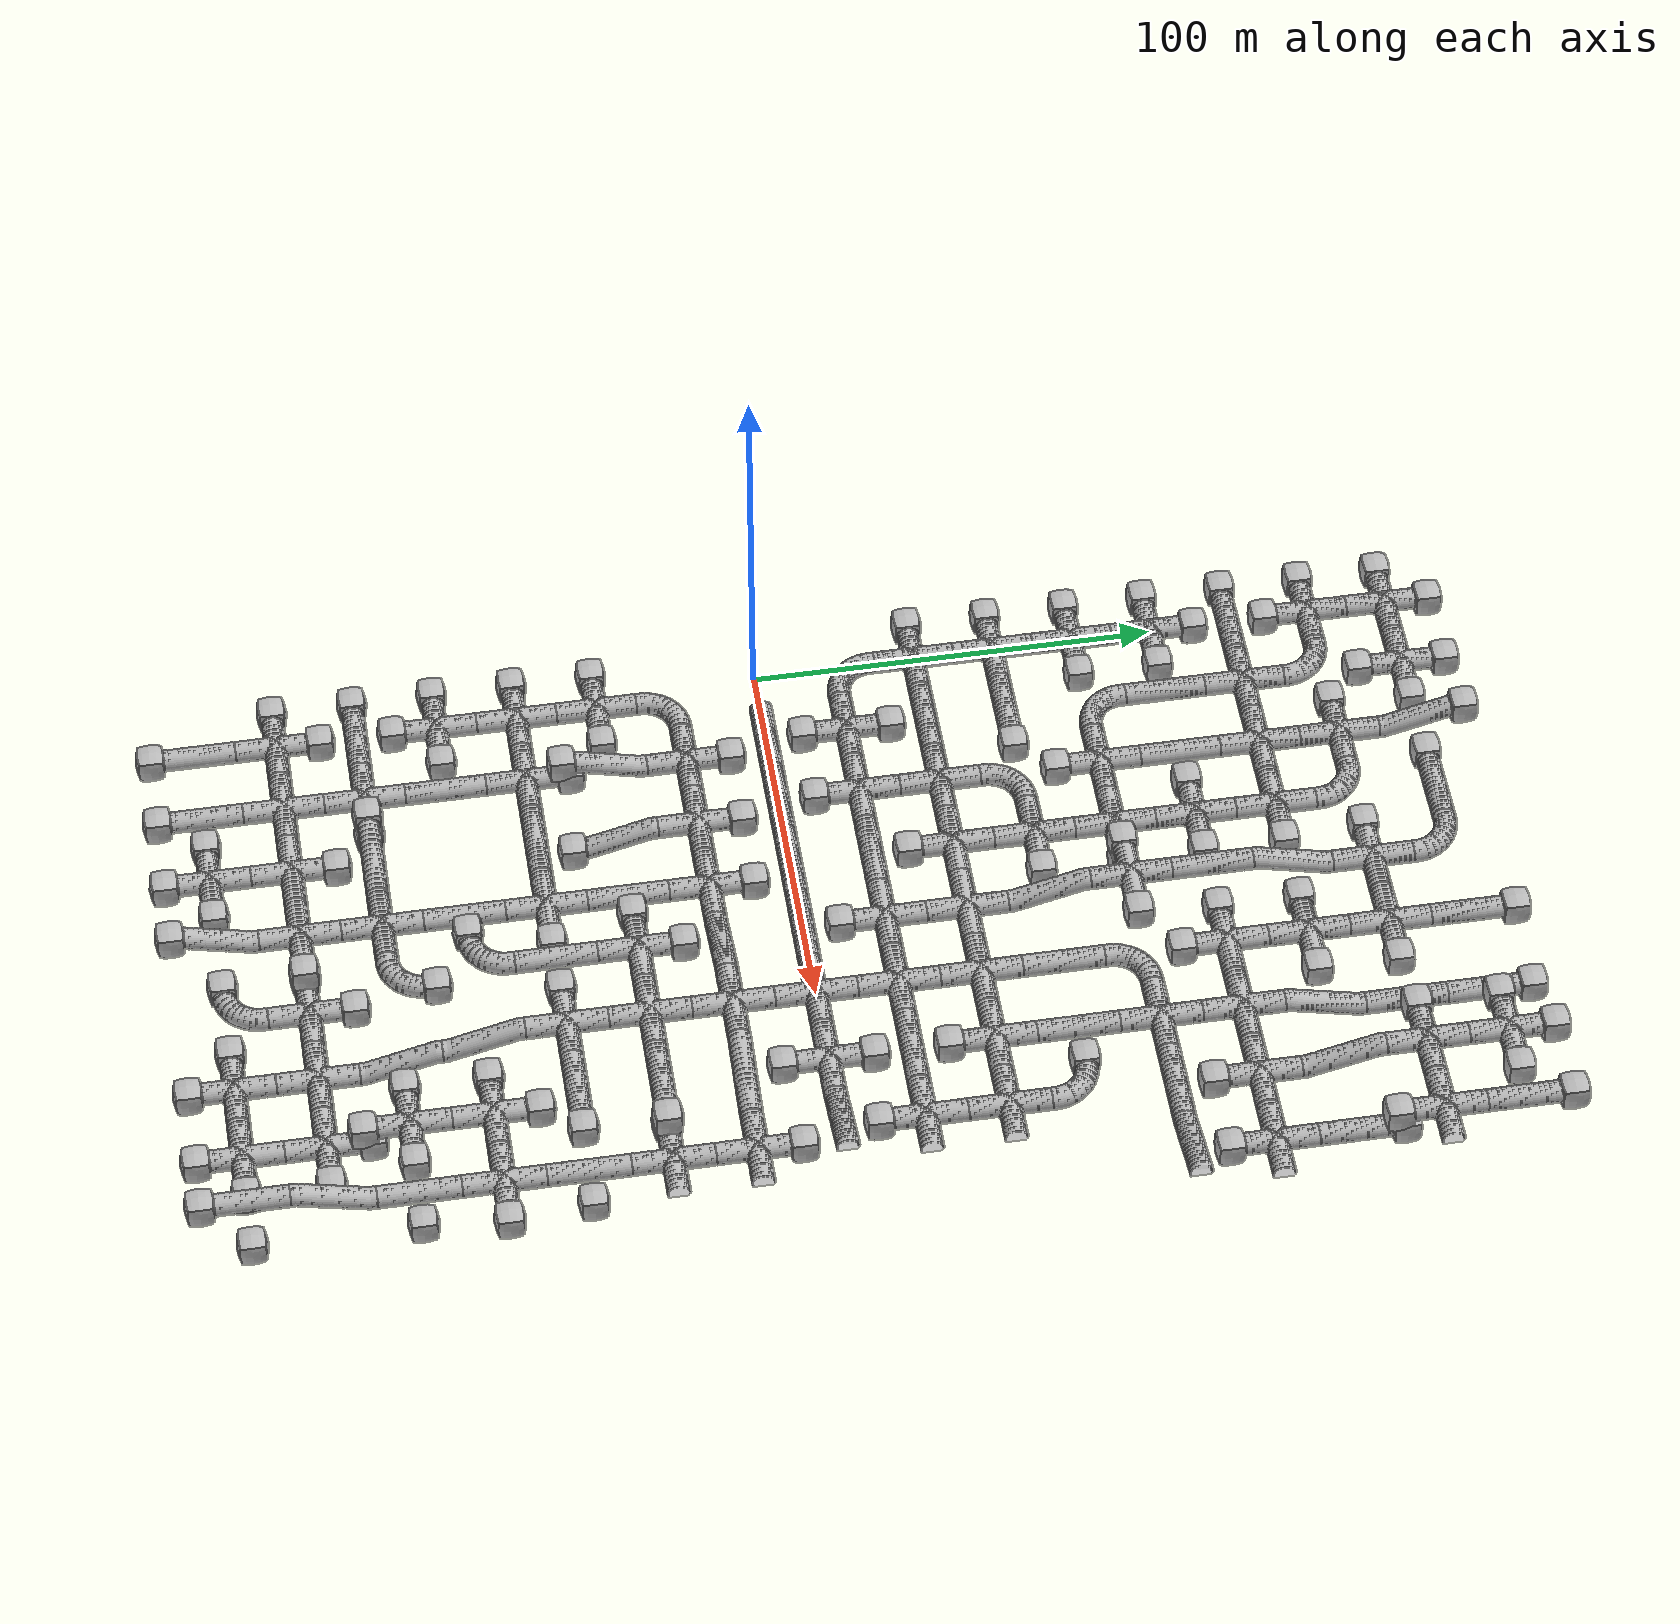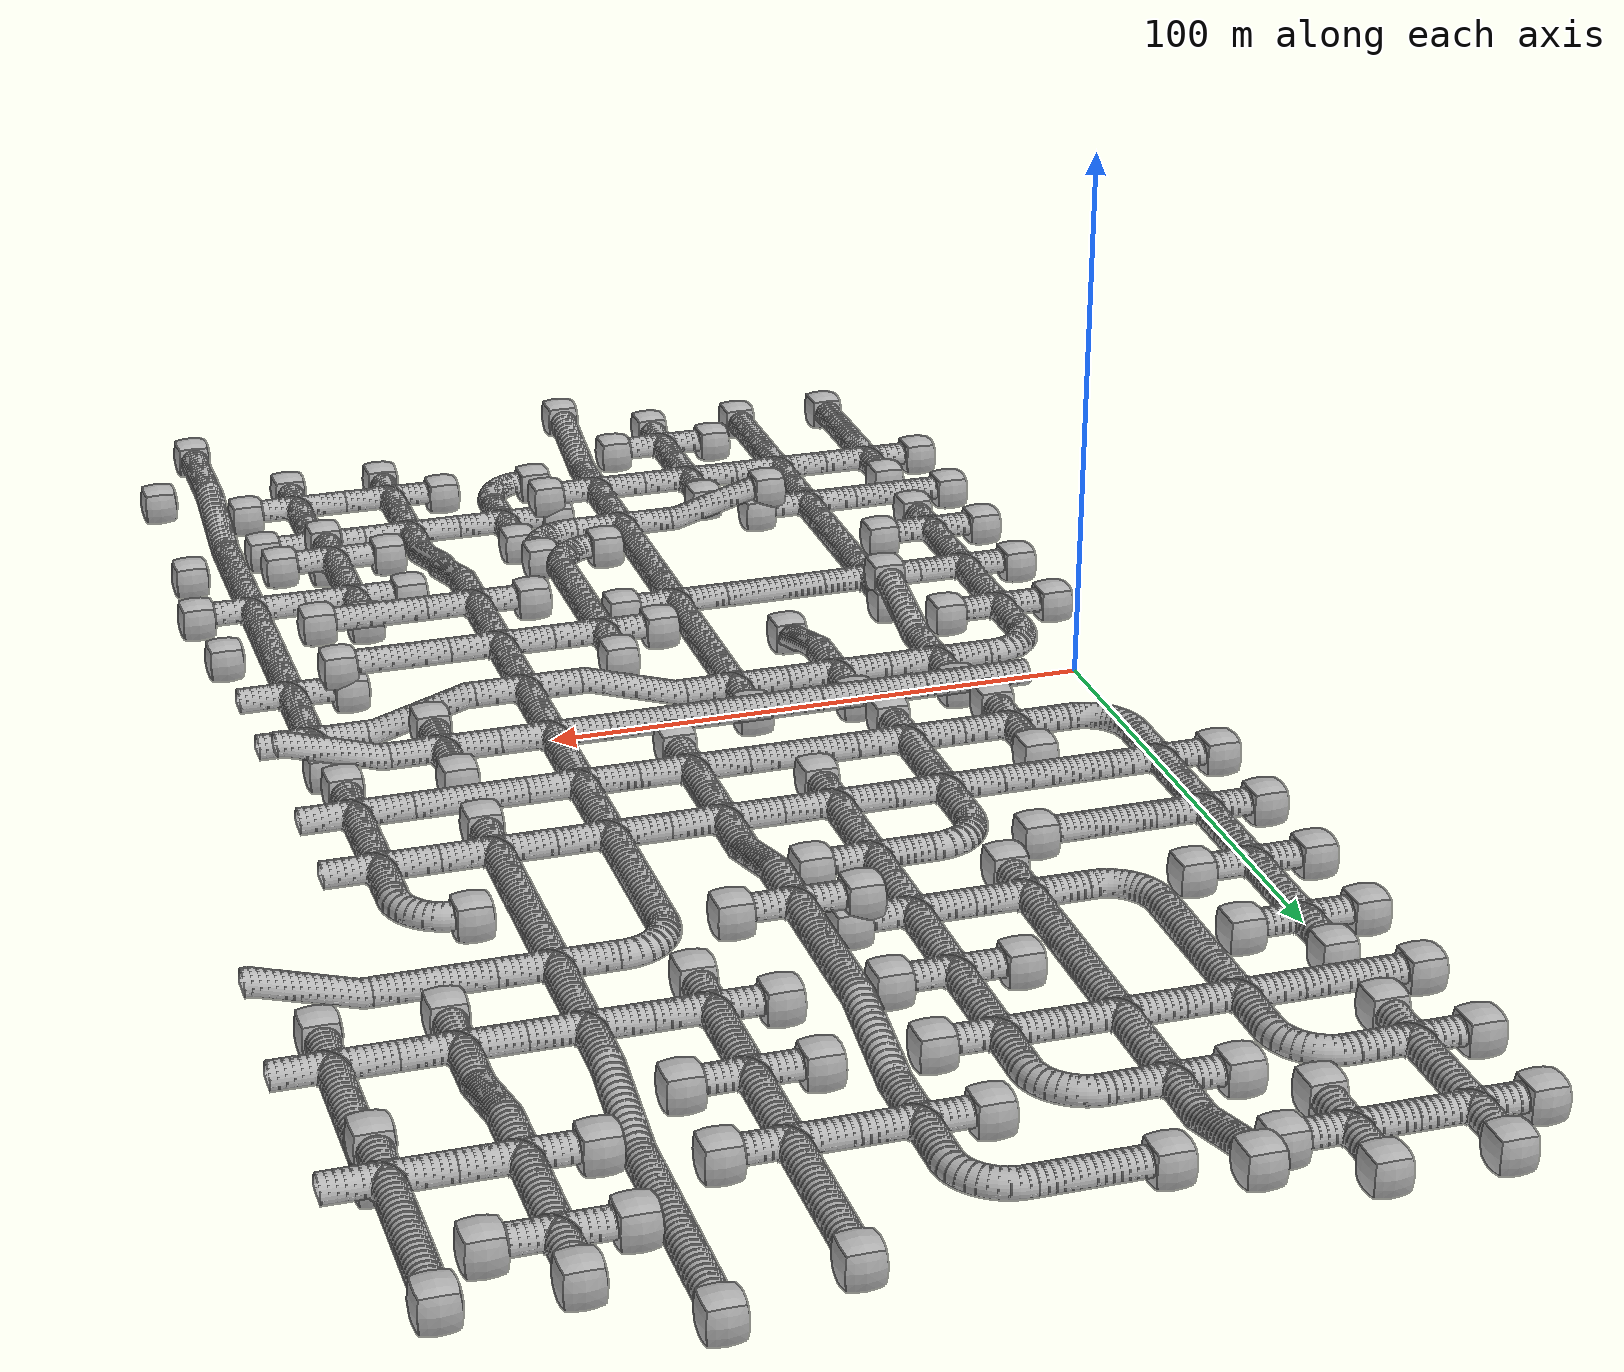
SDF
<sdf version="1.6">
 <world name="tunnel_circuit_03">
  <include><name>artifact_origin</name><pose>2 4 0.5 0 0 0</pose><uri>model://fiducial</uri></include>
  <include>
   <name>tile_1</name>
   <uri>model://tunnel_tile_1</uri>
   <pose>0.000000 160.000000 0.000000 0 0 0.000000</pose>
  </include>
  <include>
   <name>tile_2</name>
   <uri>model://tunnel_tile_blocker</uri>
   <pose>-11.000000 160.000000 0.000000 0 0 0.000000</pose>
  </include>
  <include>
   <name>tile_3</name>
   <uri>model://tunnel_tile_blocker</uri>
   <pose>0.000000 171.000000 0.000000 0 0 0.000000</pose>
  </include>
  <include>
   <name>tile_4</name>
   <uri>model://tunnel_tile_1</uri>
   <pose>20.000000 160.000000 0.000000 0 0 0.000000</pose>
  </include>
  <include>
   <name>tile_5</name>
   <uri>model://tunnel_tile_blocker</uri>
   <pose>20.000000 171.000000 0.000000 0 0 0.000000</pose>
  </include>
  <include>
   <name>tile_6</name>
   <uri>model://tunnel_tile_blocker</uri>
   <pose>20.000000 149.000000 0.000000 0 0 0.000000</pose>
  </include>
  <include>
   <name>tile_7</name>
   <uri>model://tunnel_tile_blocker</uri>
   <pose>31.000000 160.000000 0.000000 0 0 0.000000</pose>
  </include>
  <include>
   <name>tile_8</name>
   <uri>model://tunnel_tile_6</uri>
   <pose>40.000000 160.000000 0.000000 0 0 0.000000</pose>
  </include>
  <include>
   <name>tile_9</name>
   <uri>model://tunnel_tile_blocker</uri>
   <pose>40.000000 171.000000 5.000000 0 0 0.000000</pose>
  </include>
  <include>
   <name>tile_10</name>
   <uri>model://tunnel_tile_5</uri>
   <pose>60.000000 160.000000 0.000000 0 0 4.712389</pose>
  </include>
  <include>
   <name>tile_11</name>
   <uri>model://tunnel_tile_blocker</uri>
   <pose>49.000000 160.000000 0.000000 0 0 0.000000</pose>
  </include>
  <include>
   <name>tile_12</name>
   <uri>model://tunnel_tile_2</uri>
   <pose>80.000000 160.000000 0.000000 0 0 4.712389</pose>
  </include>
  <include>
   <name>tile_13</name>
   <uri>model://tunnel_tile_5</uri>
   <pose>100.000000 160.000000 0.000000 0 0 3.141593</pose>
  </include>
  <include>
   <name>tile_14</name>
   <uri>model://tunnel_tile_blocker</uri>
   <pose>100.000000 171.000000 0.000000 0 0 0.000000</pose>
  </include>
  <include>
   <name>tile_15</name>
   <uri>model://tunnel_tile_5</uri>
   <pose>120.000000 160.000000 -5.000000 0 0 3.141593</pose>
  </include>
  <include>
   <name>tile_16</name>
   <uri>model://tunnel_tile_blocker</uri>
   <pose>120.000000 171.000000 -5.000000 0 0 0.000000</pose>
  </include>
  <include>
   <name>tile_17</name>
   <uri>model://tunnel_tile_1</uri>
   <pose>140.000000 160.000000 5.000000 0 0 0.000000</pose>
  </include>
  <include>
   <name>tile_18</name>
   <uri>model://tunnel_tile_blocker</uri>
   <pose>129.000000 160.000000 5.000000 0 0 0.000000</pose>
  </include>
  <include>
   <name>tile_19</name>
   <uri>model://tunnel_tile_blocker</uri>
   <pose>151.000000 160.000000 5.000000 0 0 0.000000</pose>
  </include>
  <include>
   <name>tile_20</name>
   <uri>model://tunnel_tile_blocker</uri>
   <pose>140.000000 171.000000 5.000000 0 0 0.000000</pose>
  </include>
  <include>
   <name>tile_21</name>
   <uri>model://tunnel_tile_5</uri>
   <pose>160.000000 160.000000 5.000000 0 0 3.141593</pose>
  </include>
  <include>
   <name>tile_22</name>
   <uri>model://tunnel_tile_blocker</uri>
   <pose>160.000000 171.000000 5.000000 0 0 0.000000</pose>
  </include>
  <include>
   <name>tile_42</name>
   <uri>model://tunnel_tile_1</uri>
   <pose>0.000000 140.000000 0.000000 0 0 0.000000</pose>
  </include>
  <include>
   <name>tile_43</name>
   <uri>model://tunnel_tile_blocker</uri>
   <pose>0.000000 129.000000 0.000000 0 0 0.000000</pose>
  </include>
  <include>
   <name>tile_44</name>
   <uri>model://tunnel_tile_blocker</uri>
   <pose>-11.000000 140.000000 0.000000 0 0 0.000000</pose>
  </include>
  <include>
   <name>tile_45</name>
   <uri>model://tunnel_tile_2</uri>
   <pose>20.000000 140.000000 0.000000 0 0 4.712389</pose>
  </include>
  <include>
   <name>tile_46</name>
   <uri>model://tunnel_tile_1</uri>
   <pose>40.000000 140.000000 0.000000 0 0 0.000000</pose>
  </include>
  <include>
   <name>tile_47</name>
   <uri>model://tunnel_tile_blocker</uri>
   <pose>29.000000 140.000000 0.000000 0 0 0.000000</pose>
  </include>
  <include>
   <name>tile_48</name>
   <uri>model://tunnel_tile_2</uri>
   <pose>60.000000 140.000000 0.000000 0 0 4.712389</pose>
  </include>
  <include>
   <name>tile_49</name>
   <uri>model://tunnel_tile_1</uri>
   <pose>80.000000 140.000000 0.000000 0 0 0.000000</pose>
  </include>
  <include>
   <name>tile_50</name>
   <uri>model://tunnel_tile_blocker</uri>
   <pose>69.000000 140.000000 0.000000 0 0 0.000000</pose>
  </include>
  <include>
   <name>tile_51</name>
   <uri>model://tunnel_tile_1</uri>
   <pose>100.000000 140.000000 0.000000 0 0 0.000000</pose>
  </include>
  <include>
   <name>tile_52</name>
   <uri>model://tunnel_tile_blocker</uri>
   <pose>111.000000 140.000000 0.000000 0 0 0.000000</pose>
  </include>
  <include>
   <name>tile_53</name>
   <uri>model://tunnel_tile_5</uri>
   <pose>120.000000 140.000000 -5.000000 0 0 3.141593</pose>
  </include>
  <include>
   <name>tile_54</name>
   <uri>model://tunnel_tile_1</uri>
   <pose>140.000000 140.000000 5.000000 0 0 0.000000</pose>
  </include>
  <include>
   <name>tile_55</name>
   <uri>model://tunnel_tile_blocker</uri>
   <pose>129.000000 140.000000 5.000000 0 0 0.000000</pose>
  </include>
  <include>
   <name>tile_56</name>
   <uri>model://tunnel_tile_1</uri>
   <pose>160.000000 140.000000 5.000000 0 0 0.000000</pose>
  </include>
  <include>
   <name>tile_57</name>
   <uri>model://tunnel_tile_blocker</uri>
   <pose>160.000000 129.000000 5.000000 0 0 0.000000</pose>
  </include>
  <include>
   <name>tile_73</name>
   <uri>model://tunnel_tile_5</uri>
   <pose>0.000000 120.000000 0.000000 0 0 4.712389</pose>
  </include>
  <include>
   <name>tile_74</name>
   <uri>model://tunnel_tile_blocker</uri>
   <pose>-11.000000 120.000000 0.000000 0 0 0.000000</pose>
  </include>
  <include>
   <name>tile_75</name>
   <uri>model://tunnel_tile_1</uri>
   <pose>20.000000 120.000000 0.000000 0 0 0.000000</pose>
  </include>
  <include>
   <name>tile_76</name>
   <uri>model://tunnel_tile_1</uri>
   <pose>40.000000 120.000000 0.000000 0 0 0.000000</pose>
  </include>
  <include>
   <name>tile_77</name>
   <uri>model://tunnel_tile_1</uri>
   <pose>60.000000 120.000000 0.000000 0 0 0.000000</pose>
  </include>
  <include>
   <name>tile_78</name>
   <uri>model://tunnel_tile_blocker</uri>
   <pose>71.000000 120.000000 0.000000 0 0 0.000000</pose>
  </include>
  <include>
   <name>phone_1</name>
   <uri>model://Phone</uri>
   <pose>62.200000 124.100000 0.008000 1.570796 3.141593 0.000000</pose>
  </include>
  <include>
   <name>tile_79</name>
   <uri>model://tunnel_tile_6</uri>
   <pose>80.000000 120.000000 0.000000 0 0 3.141593</pose>
  </include>
  <include>
   <name>tile_80</name>
   <uri>model://tunnel_tile_1</uri>
   <pose>100.000000 120.000000 0.000000 0 0 0.000000</pose>
  </include>
  <include>
   <name>tile_81</name>
   <uri>model://tunnel_tile_blocker</uri>
   <pose>89.000000 120.000000 0.000000 0 0 0.000000</pose>
  </include>
  <include>
   <name>tile_82</name>
   <uri>model://tunnel_tile_blocker</uri>
   <pose>111.000000 120.000000 0.000000 0 0 0.000000</pose>
  </include>
  <include>
   <name>tile_83</name>
   <uri>model://tunnel_tile_6</uri>
   <pose>120.000000 120.000000 -5.000000 0 0 3.141593</pose>
  </include>
  <include>
   <name>tile_84</name>
   <uri>model://tunnel_tile_6</uri>
   <pose>140.000000 120.000000 0.000000 0 0 0.000000</pose>
  </include>
  <include>
   <name>tile_85</name>
   <uri>model://tunnel_tile_5</uri>
   <pose>160.000000 120.000000 0.000000 0 0 3.141593</pose>
  </include>
  <include>
   <name>tile_86</name>
   <uri>model://tunnel_tile_blocker</uri>
   <pose>160.000000 131.000000 0.000000 0 0 0.000000</pose>
  </include>
  <include>
   <name>tile_97</name>
   <uri>model://tunnel_tile_1</uri>
   <pose>0.000000 100.000000 0.000000 0 0 0.000000</pose>
  </include>
  <include>
   <name>tile_98</name>
   <uri>model://tunnel_tile_blocker</uri>
   <pose>-11.000000 100.000000 0.000000 0 0 0.000000</pose>
  </include>
  <include>
   <name>tile_99</name>
   <uri>model://tunnel_tile_blocker</uri>
   <pose>11.000000 100.000000 0.000000 0 0 0.000000</pose>
  </include>
  <include>
   <name>tile_100</name>
   <uri>model://tunnel_tile_blocker</uri>
   <pose>0.000000 111.000000 0.000000 0 0 0.000000</pose>
  </include>
  <include>
   <name>extinguisher_1</name>
   <uri>model://Extinguisher</uri>
   <pose>2.000000 102.000000 0.004000 0 0 0.000000</pose>
  </include>
  <include>
   <name>tile_101</name>
   <uri>model://tunnel_tile_5</uri>
   <pose>20.000000 100.000000 0.000000 0 0 3.141593</pose>
  </include>
  <include>
   <name>tile_102</name>
   <uri>model://tunnel_tile_5</uri>
   <pose>40.000000 100.000000 0.000000 0 0 3.141593</pose>
  </include>
  <include>
   <name>tile_103</name>
   <uri>model://tunnel_tile_1</uri>
   <pose>60.000000 100.000000 0.000000 0 0 0.000000</pose>
  </include>
  <include>
   <name>tile_104</name>
   <uri>model://tunnel_tile_blocker</uri>
   <pose>49.000000 100.000000 0.000000 0 0 0.000000</pose>
  </include>
  <include>
   <name>tile_105</name>
   <uri>model://tunnel_tile_blocker</uri>
   <pose>71.000000 100.000000 0.000000 0 0 0.000000</pose>
  </include>
  <include>
   <name>tile_106</name>
   <uri>model://tunnel_tile_5</uri>
   <pose>80.000000 100.000000 5.000000 0 0 3.141593</pose>
  </include>
  <include>
   <name>tile_107</name>
   <uri>model://tunnel_tile_1</uri>
   <pose>100.000000 100.000000 0.000000 0 0 0.000000</pose>
  </include>
  <include>
   <name>tile_108</name>
   <uri>model://tunnel_tile_blocker</uri>
   <pose>100.000000 89.000000 0.000000 0 0 0.000000</pose>
  </include>
  <include>
   <name>tile_109</name>
   <uri>model://tunnel_tile_blocker</uri>
   <pose>89.000000 100.000000 0.000000 0 0 0.000000</pose>
  </include>
  <include>
   <name>tile_110</name>
   <uri>model://tunnel_tile_1</uri>
   <pose>120.000000 100.000000 0.000000 0 0 0.000000</pose>
  </include>
  <include>
   <name>phone_2</name>
   <uri>model://Phone</uri>
   <pose>122.000000 104.000000 0.008000 1.570796 3.141593 0.523599</pose>
  </include>
  <include>
   <name>tile_111</name>
   <uri>model://tunnel_tile_1</uri>
   <pose>140.000000 100.000000 0.000000 0 0 0.000000</pose>
  </include>
  <include>
   <name>tile_112</name>
   <uri>model://tunnel_tile_blocker</uri>
   <pose>140.000000 89.000000 0.000000 0 0 0.000000</pose>
  </include>
  <include>
   <name>tile_113</name>
   <uri>model://tunnel_tile_1</uri>
   <pose>160.000000 100.000000 0.000000 0 0 0.000000</pose>
  </include>
  <include>
   <name>tile_114</name>
   <uri>model://tunnel_tile_blocker</uri>
   <pose>160.000000 89.000000 0.000000 0 0 0.000000</pose>
  </include>
  <include>
   <name>tile_129</name>
   <uri>model://tunnel_tile_1</uri>
   <pose>0.000000 80.000000 0.000000 0 0 0.000000</pose>
  </include>
  <include>
   <name>tile_130</name>
   <uri>model://tunnel_tile_blocker</uri>
   <pose>-11.000000 80.000000 0.000000 0 0 0.000000</pose>
  </include>
  <include>
   <name>tile_131</name>
   <uri>model://tunnel_tile_blocker</uri>
   <pose>11.000000 80.000000 0.000000 0 0 0.000000</pose>
  </include>
  <include>
   <name>tile_132</name>
   <uri>model://tunnel_tile_2</uri>
   <pose>20.000000 80.000000 0.000000 0 0 1.570796</pose>
  </include>
  <include>
   <name>tile_133</name>
   <uri>model://tunnel_tile_1</uri>
   <pose>40.000000 80.000000 0.000000 0 0 0.000000</pose>
  </include>
  <include>
   <name>tile_134</name>
   <uri>model://tunnel_tile_blocker</uri>
   <pose>40.000000 69.000000 0.000000 0 0 0.000000</pose>
  </include>
  <include>
   <name>tile_135</name>
   <uri>model://tunnel_tile_1</uri>
   <pose>60.000000 80.000000 0.000000 0 0 0.000000</pose>
  </include>
  <include>
   <name>tile_136</name>
   <uri>model://tunnel_tile_blocker</uri>
   <pose>71.000000 80.000000 0.000000 0 0 0.000000</pose>
  </include>
  <include>
   <name>tile_137</name>
   <uri>model://tunnel_tile_1</uri>
   <pose>80.000000 80.000000 5.000000 0 0 0.000000</pose>
  </include>
  <include>
   <name>tile_138</name>
   <uri>model://tunnel_tile_blocker</uri>
   <pose>69.000000 80.000000 5.000000 0 0 0.000000</pose>
  </include>
  <include>
   <name>tile_139</name>
   <uri>model://tunnel_tile_blocker</uri>
   <pose>91.000000 80.000000 5.000000 0 0 0.000000</pose>
  </include>
  <include>
   <name>tile_140</name>
   <uri>model://tunnel_tile_2</uri>
   <pose>100.000000 80.000000 0.000000 0 0 0.000000</pose>
  </include>
  <include>
   <name>tile_141</name>
   <uri>model://tunnel_tile_1</uri>
   <pose>120.000000 80.000000 0.000000 0 0 0.000000</pose>
  </include>
  <include>
   <name>tile_142</name>
   <uri>model://tunnel_tile_5</uri>
   <pose>140.000000 80.000000 0.000000 0 0 1.570796</pose>
  </include>
  <include>
   <name>tile_143</name>
   <uri>model://tunnel_tile_6</uri>
   <pose>160.000000 80.000000 0.000000 0 0 4.712389</pose>
  </include>
  <include>
   <name>tile_156</name>
   <uri>model://tunnel_tile_1</uri>
   <pose>0.000000 60.000000 0.000000 0 0 0.000000</pose>
  </include>
  <include>
   <name>tile_157</name>
   <uri>model://tunnel_tile_blocker</uri>
   <pose>-11.000000 60.000000 0.000000 0 0 0.000000</pose>
  </include>
  <include>
   <name>tile_158</name>
   <uri>model://tunnel_tile_5</uri>
   <pose>20.000000 60.000000 0.000000 0 0 1.570796</pose>
  </include>
  <include>
   <name>tile_159</name>
   <uri>model://tunnel_tile_blocker</uri>
   <pose>31.000000 60.000000 0.000000 0 0 0.000000</pose>
  </include>
  <include>
   <name>tile_160</name>
   <uri>model://tunnel_tile_2</uri>
   <pose>40.000000 60.000000 0.000000 0 0 0.000000</pose>
  </include>
  <include>
   <name>tile_161</name>
   <uri>model://tunnel_tile_1</uri>
   <pose>60.000000 60.000000 0.000000 0 0 0.000000</pose>
  </include>
  <include>
   <name>tile_162</name>
   <uri>model://tunnel_tile_blocker</uri>
   <pose>71.000000 60.000000 0.000000 0 0 0.000000</pose>
  </include>
  <include>
   <name>tile_163</name>
   <uri>model://tunnel_tile_6</uri>
   <pose>80.000000 60.000000 0.000000 0 0 0.000000</pose>
  </include>
  <include>
   <name>backpack_1</name>
   <uri>model://Backpack</uri>
   <pose>82.200000 70.100000 5.004000 0 0 0.349066</pose>
  </include>
  <include>
   <name>tile_164</name>
   <uri>model://tunnel_tile_5</uri>
   <pose>100.000000 60.000000 0.000000 0 0 3.141593</pose>
  </include>
  <include>
   <name>tile_165</name>
   <uri>model://tunnel_tile_5</uri>
   <pose>120.000000 60.000000 0.000000 0 0 3.141593</pose>
  </include>
  <include>
   <name>tile_166</name>
   <uri>model://tunnel_tile_2</uri>
   <pose>140.000000 60.000000 0.000000 0 0 4.712389</pose>
  </include>
  <include>
   <name>tile_167</name>
   <uri>model://tunnel_tile_blocker</uri>
   <pose>129.000000 60.000000 0.000000 0 0 0.000000</pose>
  </include>
  <include>
   <name>tile_184</name>
   <uri>model://tunnel_tile_1</uri>
   <pose>0.000000 40.000000 0.000000 0 0 0.000000</pose>
  </include>
  <include>
   <name>tile_185</name>
   <uri>model://tunnel_tile_blocker</uri>
   <pose>-11.000000 40.000000 0.000000 0 0 0.000000</pose>
  </include>
  <include>
   <name>tile_186</name>
   <uri>model://tunnel_tile_5</uri>
   <pose>20.000000 40.000000 0.000000 0 0 4.712389</pose>
  </include>
  <include>
   <name>tile_187</name>
   <uri>model://tunnel_tile_1</uri>
   <pose>40.000000 40.000000 0.000000 0 0 0.000000</pose>
  </include>
  <include>
   <name>tile_188</name>
   <uri>model://tunnel_tile_1</uri>
   <pose>60.000000 40.000000 0.000000 0 0 0.000000</pose>
  </include>
  <include>
   <name>tile_189</name>
   <uri>model://tunnel_tile_blocker</uri>
   <pose>60.000000 29.000000 0.000000 0 0 0.000000</pose>
  </include>
  <include>
   <name>phone_4</name>
   <uri>model://Phone</uri>
   <pose>61.200000 34.900000 0.008000 1.570796 3.141593 0.000000</pose>
  </include>
  <include>
   <name>tile_190</name>
   <uri>model://tunnel_tile_1</uri>
   <pose>80.000000 40.000000 0.000000 0 0 0.000000</pose>
  </include>
  <include>
   <name>tile_191</name>
   <uri>model://tunnel_tile_1</uri>
   <pose>100.000000 40.000000 0.000000 0 0 0.000000</pose>
  </include>
  <include>
   <name>tile_192</name>
   <uri>model://tunnel_tile_1</uri>
   <pose>120.000000 40.000000 0.000000 0 0 0.000000</pose>
  </include>
  <include>
   <name>tile_193</name>
   <uri>model://tunnel_tile_blocker</uri>
   <pose>120.000000 29.000000 0.000000 0 0 0.000000</pose>
  </include>
  <include>
   <name>tile_194</name>
   <uri>model://tunnel_tile_1</uri>
   <pose>140.000000 40.000000 0.000000 0 0 0.000000</pose>
  </include>
  <include>
   <name>tile_209</name>
   <uri>model://tunnel_tile_2</uri>
   <pose>0.000000 20.000000 0.000000 0 0 1.570796</pose>
  </include>
  <include>
   <name>tile_210</name>
   <uri>model://tunnel_tile_1</uri>
   <pose>20.000000 20.000000 0.000000 0 0 0.000000</pose>
  </include>
  <include>
   <name>tile_211</name>
   <uri>model://tunnel_tile_blocker</uri>
   <pose>20.000000 9.000000 0.000000 0 0 0.000000</pose>
  </include>
  <include>
   <name>tile_212</name>
   <uri>model://tunnel_tile_blocker</uri>
   <pose>20.000000 31.000000 0.000000 0 0 0.000000</pose>
  </include>
  <include>
   <name>tile_213</name>
   <uri>model://tunnel_tile_1</uri>
   <pose>40.000000 20.000000 0.000000 0 0 0.000000</pose>
  </include>
  <include>
   <name>tile_214</name>
   <uri>model://tunnel_tile_blocker</uri>
   <pose>40.000000 9.000000 0.000000 0 0 0.000000</pose>
  </include>
  <include>
   <name>tile_215</name>
   <uri>model://tunnel_tile_5</uri>
   <pose>60.000000 20.000000 0.000000 0 0 4.712389</pose>
  </include>
  <include>
   <name>tile_216</name>
   <uri>model://tunnel_tile_1</uri>
   <pose>80.000000 20.000000 0.000000 0 0 0.000000</pose>
  </include>
  <include>
   <name>tile_217</name>
   <uri>model://tunnel_tile_blocker</uri>
   <pose>80.000000 9.000000 0.000000 0 0 0.000000</pose>
  </include>
  <include>
   <name>extinguisher_2</name>
   <uri>model://Extinguisher</uri>
   <pose>82.100000 22.100000 0.004000 0 0 0.000000</pose>
  </include>
  <include>
   <name>tile_218</name>
   <uri>model://tunnel_tile_1</uri>
   <pose>100.000000 20.000000 0.000000 0 0 0.000000</pose>
  </include>
  <include>
   <name>tile_219</name>
   <uri>model://tunnel_tile_5</uri>
   <pose>120.000000 20.000000 0.000000 0 0 1.570796</pose>
  </include>
  <include>
   <name>tile_220</name>
   <uri>model://tunnel_tile_1</uri>
   <pose>140.000000 20.000000 0.000000 0 0 0.000000</pose>
  </include>
  <include>
   <name>tile_221</name>
   <uri>model://tunnel_tile_blocker</uri>
   <pose>140.000000 9.000000 0.000000 0 0 0.000000</pose>
  </include>
  <include>
   <name>tile_240</name>
   <uri>model://tunnel_tile_5</uri>
   <pose>20.000000 0.000000 0.000000 0 0 1.570796</pose>
  </include>
  <include>
   <name>tile_241</name>
   <uri>model://tunnel_tile_5</uri>
   <pose>40.000000 0.000000 0.000000 0 0 1.570796</pose>
  </include>
  <include>
   <name>tile_242</name>
   <uri>model://tunnel_tile_5</uri>
   <pose>60.000000 0.000000 0.000000 0 0 1.570796</pose>
  </include>
  <include>
   <name>tile_243</name>
   <uri>model://tunnel_tile_5</uri>
   <pose>80.000000 0.000000 0.000000 0 0 1.570796</pose>
  </include>
  <include>
   <name>tile_244</name>
   <uri>model://tunnel_tile_1</uri>
   <pose>100.000000 0.000000 0.000000 0 0 0.000000</pose>
  </include>
  <include>
   <name>tile_245</name>
   <uri>model://tunnel_tile_1</uri>
   <pose>120.000000 0.000000 0.000000 0 0 0.000000</pose>
  </include>
  <include>
   <name>tile_246</name>
   <uri>model://tunnel_tile_blocker</uri>
   <pose>120.000000 11.000000 0.000000 0 0 0.000000</pose>
  </include>
  <include>
   <name>tile_247</name>
   <uri>model://tunnel_tile_blocker</uri>
   <pose>120.000000 -11.000000 0.000000 0 0 0.000000</pose>
  </include>
  <include>
   <name>tile_248</name>
   <uri>model://tunnel_tile_6</uri>
   <pose>140.000000 0.000000 0.000000 0 0 4.712389</pose>
  </include>
  <include>
   <name>tile_265</name>
   <uri>model://tunnel_tile_2</uri>
   <pose>0.000000 -20.000000 -5.000000 0 0 0.000000</pose>
  </include>
  <include>
   <name>tile_266</name>
   <uri>model://tunnel_tile_1</uri>
   <pose>20.000000 -20.000000 -5.000000 0 0 0.000000</pose>
  </include>
  <include>
   <name>tile_267</name>
   <uri>model://tunnel_tile_blocker</uri>
   <pose>20.000000 -9.000000 -5.000000 0 0 0.000000</pose>
  </include>
  <include>
   <name>tile_268</name>
   <uri>model://tunnel_tile_1</uri>
   <pose>40.000000 -20.000000 -5.000000 0 0 0.000000</pose>
  </include>
  <include>
   <name>tile_269</name>
   <uri>model://tunnel_tile_blocker</uri>
   <pose>40.000000 -9.000000 -5.000000 0 0 0.000000</pose>
  </include>
  <include>
   <name>tile_270</name>
   <uri>model://tunnel_tile_1</uri>
   <pose>60.000000 -20.000000 -5.000000 0 0 0.000000</pose>
  </include>
  <include>
   <name>tile_271</name>
   <uri>model://tunnel_tile_blocker</uri>
   <pose>60.000000 -9.000000 -5.000000 0 0 0.000000</pose>
  </include>
  <include>
   <name>backpack_2</name>
   <uri>model://Backpack</uri>
   <pose>62.200000 -12.900000 -4.996000 0 0 5.235988</pose>
  </include>
  <include>
   <name>tile_272</name>
   <uri>model://tunnel_tile_6</uri>
   <pose>80.000000 -20.000000 -5.000000 0 0 4.712389</pose>
  </include>
  <include>
   <name>tile_273</name>
   <uri>model://tunnel_tile_1</uri>
   <pose>100.000000 -20.000000 0.000000 0 0 0.000000</pose>
  </include>
  <include>
   <name>tile_274</name>
   <uri>model://tunnel_tile_6</uri>
   <pose>120.000000 -20.000000 -5.000000 0 0 1.570796</pose>
  </include>
  <include>
   <name>tile_275</name>
   <uri>model://tunnel_tile_1</uri>
   <pose>140.000000 -20.000000 -5.000000 0 0 0.000000</pose>
  </include>
  <include>
   <name>tile_276</name>
   <uri>model://tunnel_tile_blocker</uri>
   <pose>140.000000 -9.000000 -5.000000 0 0 0.000000</pose>
  </include>
  <include>
   <name>tile_294</name>
   <uri>model://tunnel_tile_1</uri>
   <pose>0.000000 -40.000000 -5.000000 0 0 0.000000</pose>
  </include>
  <include>
   <name>tile_295</name>
   <uri>model://tunnel_tile_blocker</uri>
   <pose>11.000000 -40.000000 -5.000000 0 0 0.000000</pose>
  </include>
  <include>
   <name>tile_296</name>
   <uri>model://tunnel_tile_blocker</uri>
   <pose>-11.000000 -40.000000 -5.000000 0 0 0.000000</pose>
  </include>
  <include>
   <name>backpack_3</name>
   <uri>model://Backpack</uri>
   <pose>5.000000 -40.000000 -5.000000 0 0 0.349066</pose>
  </include>
  <include>
   <name>tile_297</name>
   <uri>model://tunnel_tile_6</uri>
   <pose>20.000000 -40.000000 -5.000000 0 0 3.141593</pose>
  </include>
  <include>
   <name>tile_298</name>
   <uri>model://tunnel_tile_blocker</uri>
   <pose>20.000000 -51.000000 0.000000 0 0 0.000000</pose>
  </include>
  <include>
   <name>tile_299</name>
   <uri>model://tunnel_tile_6</uri>
   <pose>40.000000 -40.000000 -10.000000 0 0 0.000000</pose>
  </include>
  <include>
   <name>tile_300</name>
   <uri>model://tunnel_tile_blocker</uri>
   <pose>40.000000 -51.000000 -10.000000 0 0 0.000000</pose>
  </include>
  <include>
   <name>tile_301</name>
   <uri>model://tunnel_tile_5</uri>
   <pose>60.000000 -40.000000 -5.000000 0 0 0.000000</pose>
  </include>
  <include>
   <name>tile_302</name>
   <uri>model://tunnel_tile_1</uri>
   <pose>80.000000 -40.000000 0.000000 0 0 0.000000</pose>
  </include>
  <include>
   <name>tile_303</name>
   <uri>model://tunnel_tile_blocker</uri>
   <pose>80.000000 -29.000000 0.000000 0 0 0.000000</pose>
  </include>
  <include>
   <name>tile_304</name>
   <uri>model://tunnel_tile_blocker</uri>
   <pose>69.000000 -40.000000 0.000000 0 0 0.000000</pose>
  </include>
  <include>
   <name>tile_305</name>
   <uri>model://tunnel_tile_1</uri>
   <pose>100.000000 -40.000000 0.000000 0 0 0.000000</pose>
  </include>
  <include>
   <name>tile_306</name>
   <uri>model://tunnel_tile_5</uri>
   <pose>120.000000 -40.000000 0.000000 0 0 1.570796</pose>
  </include>
  <include>
   <name>tile_307</name>
   <uri>model://tunnel_tile_blocker</uri>
   <pose>131.000000 -40.000000 0.000000 0 0 0.000000</pose>
  </include>
  <include>
   <name>tile_308</name>
   <uri>model://tunnel_tile_1</uri>
   <pose>140.000000 -40.000000 -5.000000 0 0 0.000000</pose>
  </include>
  <include>
   <name>tile_309</name>
   <uri>model://tunnel_tile_blocker</uri>
   <pose>129.000000 -40.000000 -5.000000 0 0 0.000000</pose>
  </include>
  <include>
   <name>tile_321</name>
   <uri>model://tunnel_tile_1</uri>
   <pose>0.000000 -60.000000 -5.000000 0 0 0.000000</pose>
  </include>
  <include>
   <name>tile_322</name>
   <uri>model://tunnel_tile_blocker</uri>
   <pose>-11.000000 -60.000000 -5.000000 0 0 0.000000</pose>
  </include>
  <include>
   <name>tile_323</name>
   <uri>model://tunnel_tile_1</uri>
   <pose>20.000000 -60.000000 -5.000000 0 0 0.000000</pose>
  </include>
  <include>
   <name>tile_324</name>
   <uri>model://tunnel_tile_blocker</uri>
   <pose>20.000000 -49.000000 -5.000000 0 0 0.000000</pose>
  </include>
  <include>
   <name>tile_325</name>
   <uri>model://tunnel_tile_5</uri>
   <pose>40.000000 -60.000000 -5.000000 0 0 4.712389</pose>
  </include>
  <include>
   <name>tile_326</name>
   <uri>model://tunnel_tile_1</uri>
   <pose>60.000000 -60.000000 -5.000000 0 0 0.000000</pose>
  </include>
  <include>
   <name>tile_327</name>
   <uri>model://tunnel_tile_blocker</uri>
   <pose>71.000000 -60.000000 -5.000000 0 0 0.000000</pose>
  </include>
  <include>
   <name>tile_328</name>
   <uri>model://tunnel_tile_5</uri>
   <pose>80.000000 -60.000000 0.000000 0 0 0.000000</pose>
  </include>
  <include>
   <name>tile_329</name>
   <uri>model://tunnel_tile_1</uri>
   <pose>100.000000 -60.000000 0.000000 0 0 0.000000</pose>
  </include>
  <include>
   <name>tile_330</name>
   <uri>model://tunnel_tile_blocker</uri>
   <pose>89.000000 -60.000000 0.000000 0 0 0.000000</pose>
  </include>
  <include>
   <name>tile_331</name>
   <uri>model://tunnel_tile_5</uri>
   <pose>120.000000 -60.000000 0.000000 0 0 1.570796</pose>
  </include>
  <include>
   <name>tile_332</name>
   <uri>model://tunnel_tile_blocker</uri>
   <pose>131.000000 -60.000000 0.000000 0 0 0.000000</pose>
  </include>
  <include>
   <name>tile_333</name>
   <uri>model://tunnel_tile_5</uri>
   <pose>140.000000 -60.000000 -5.000000 0 0 0.000000</pose>
  </include>
  <include>
   <name>tile_335</name>
   <uri>model://tunnel_tile_blocker</uri>
   <pose>149.000000 -60.000000 -5.000000 0 0 0.000000</pose>
  </include>
  <include>
   <name>tile_353</name>
   <uri>model://tunnel_tile_1</uri>
   <pose>0.000000 -80.000000 -5.000000 0 0 0.000000</pose>
  </include>
  <include>
   <name>tile_354</name>
   <uri>model://tunnel_tile_blocker</uri>
   <pose>11.000000 -80.000000 -5.000000 0 0 0.000000</pose>
  </include>
  <include>
   <name>tile_355</name>
   <uri>model://tunnel_tile_blocker</uri>
   <pose>-11.000000 -80.000000 -5.000000 0 0 0.000000</pose>
  </include>
  <include>
   <name>tile_356</name>
   <uri>model://tunnel_tile_blocker</uri>
   <pose>0.000000 -91.000000 -5.000000 0 0 0.000000</pose>
  </include>
  <include>
   <name>extinguisher_4</name>
   <uri>model://Extinguisher</uri>
   <pose>-2.000000 -78.100000 -4.996000 0 0 0.000000</pose>
  </include>
  <include>
   <name>tile_357</name>
   <uri>model://tunnel_tile_5</uri>
   <pose>20.000000 -80.000000 -5.000000 0 0 0.000000</pose>
  </include>
  <include>
   <name>tile_358</name>
   <uri>model://tunnel_tile_5</uri>
   <pose>60.000000 -80.000000 -5.000000 0 0 0.000000</pose>
  </include>
  <include>
   <name>tile_359</name>
   <uri>model://tunnel_tile_2</uri>
   <pose>80.000000 -80.000000 0.000000 0 0 3.141593</pose>
  </include>
  <include>
   <name>tile_360</name>
   <uri>model://tunnel_tile_blocker</uri>
   <pose>69.000000 -80.000000 0.000000 0 0 0.000000</pose>
  </include>
  <include>
   <name>tile_361</name>
   <uri>model://tunnel_tile_6</uri>
   <pose>100.000000 -80.000000 -5.000000 0 0 0.000000</pose>
  </include>
  <include>
   <name>tile_362</name>
   <uri>model://tunnel_tile_1</uri>
   <pose>120.000000 -80.000000 -5.000000 0 0 0.000000</pose>
  </include>
  <include>
   <name>tile_363</name>
   <uri>model://tunnel_tile_blocker</uri>
   <pose>120.000000 -69.000000 -5.000000 0 0 0.000000</pose>
  </include>
  <include>
   <name>tile_364</name>
   <uri>model://tunnel_tile_blocker</uri>
   <pose>109.000000 -80.000000 -5.000000 0 0 0.000000</pose>
  </include>
  <include>
   <name>tile_365</name>
   <uri>model://tunnel_tile_1</uri>
   <pose>140.000000 -80.000000 -5.000000 0 0 0.000000</pose>
  </include>
  <include>
   <name>tile_366</name>
   <uri>model://tunnel_tile_blocker</uri>
   <pose>151.000000 -80.000000 -5.000000 0 0 0.000000</pose>
  </include>
  <include>
   <name>tile_380</name>
   <uri>model://tunnel_tile_5</uri>
   <pose>0.000000 -100.000000 -5.000000 0 0 4.712389</pose>
  </include>
  <include>
   <name>tile_381</name>
   <uri>model://tunnel_tile_blocker</uri>
   <pose>-11.000000 -100.000000 -5.000000 0 0 0.000000</pose>
  </include>
  <include>
   <name>tile_382</name>
   <uri>model://tunnel_tile_1</uri>
   <pose>20.000000 -100.000000 -5.000000 0 0 0.000000</pose>
  </include>
  <include>
   <name>tile_383</name>
   <uri>model://tunnel_tile_blocker</uri>
   <pose>31.000000 -100.000000 -5.000000 0 0 0.000000</pose>
  </include>
  <include>
   <name>tile_384</name>
   <uri>model://tunnel_tile_6</uri>
   <pose>40.000000 -100.000000 -5.000000 0 0 1.570796</pose>
  </include>
  <include>
   <name>tile_385</name>
   <uri>model://tunnel_tile_blocker</uri>
   <pose>29.000000 -100.000000 0.000000 0 0 0.000000</pose>
  </include>
  <include>
   <name>tile_386</name>
   <uri>model://tunnel_tile_1</uri>
   <pose>60.000000 -100.000000 -5.000000 0 0 0.000000</pose>
  </include>
  <include>
   <name>tile_387</name>
   <uri>model://tunnel_tile_2</uri>
   <pose>80.000000 -100.000000 -5.000000 0 0 3.141593</pose>
  </include>
  <include>
   <name>tile_388</name>
   <uri>model://tunnel_tile_blocker</uri>
   <pose>80.000000 -89.000000 -5.000000 0 0 0.000000</pose>
  </include>
  <include>
   <name>tile_389</name>
   <uri>model://tunnel_tile_6</uri>
   <pose>100.000000 -100.000000 -10.000000 0 0 0.000000</pose>
  </include>
  <include>
   <name>tile_390</name>
   <uri>model://tunnel_tile_1</uri>
   <pose>120.000000 -100.000000 -5.000000 0 0 0.000000</pose>
  </include>
  <include>
   <name>tile_391</name>
   <uri>model://tunnel_tile_blocker</uri>
   <pose>131.000000 -100.000000 -5.000000 0 0 0.000000</pose>
  </include>
  <include>
   <name>tile_392</name>
   <uri>model://tunnel_tile_blocker</uri>
   <pose>109.000000 -100.000000 -5.000000 0 0 0.000000</pose>
  </include>
  <include>
   <name>tile_393</name>
   <uri>model://tunnel_tile_blocker</uri>
   <pose>120.000000 -111.000000 -5.000000 0 0 0.000000</pose>
  </include>
  <include>
   <name>tile_394</name>
   <uri>model://tunnel_tile_5</uri>
   <pose>140.000000 -100.000000 -5.000000 0 0 0.000000</pose>
  </include>
  <include>
   <name>backpack_4</name>
   <uri>model://Backpack</uri>
   <pose>142.200000 -95.900000 -4.996000 0 0 3.839724</pose>
  </include>
  <include>
   <name>tile_396</name>
   <uri>model://tunnel_tile_blocker</uri>
   <pose>149.000000 -100.000000 -5.000000 0 0 0.000000</pose>
  </include>
  <include>
   <name>tile_411</name>
   <uri>model://tunnel_tile_1</uri>
   <pose>0.000000 -120.000000 -5.000000 0 0 0.000000</pose>
  </include>
  <include>
   <name>tile_412</name>
   <uri>model://tunnel_tile_blocker</uri>
   <pose>0.000000 -109.000000 -5.000000 0 0 0.000000</pose>
  </include>
  <include>
   <name>tile_413</name>
   <uri>model://tunnel_tile_blocker</uri>
   <pose>-11.000000 -120.000000 -5.000000 0 0 0.000000</pose>
  </include>
  <include>
   <name>tile_414</name>
   <uri>model://tunnel_tile_1</uri>
   <pose>20.000000 -120.000000 -5.000000 0 0 0.000000</pose>
  </include>
  <include>
   <name>tile_415</name>
   <uri>model://tunnel_tile_1</uri>
   <pose>40.000000 -120.000000 -5.000000 0 0 0.000000</pose>
  </include>
  <include>
   <name>tile_416</name>
   <uri>model://tunnel_tile_blocker</uri>
   <pose>40.000000 -109.000000 -5.000000 0 0 0.000000</pose>
  </include>
  <include>
   <name>tile_417</name>
   <uri>model://tunnel_tile_1</uri>
   <pose>60.000000 -120.000000 -5.000000 0 0 0.000000</pose>
  </include>
  <include>
   <name>tile_418</name>
   <uri>model://tunnel_tile_blocker</uri>
   <pose>71.000000 -120.000000 -5.000000 0 0 0.000000</pose>
  </include>
  <include>
   <name>tile_419</name>
   <uri>model://tunnel_tile_1</uri>
   <pose>80.000000 -120.000000 -10.000000 0 0 0.000000</pose>
  </include>
  <include>
   <name>tile_420</name>
   <uri>model://tunnel_tile_blocker</uri>
   <pose>80.000000 -109.000000 -10.000000 0 0 0.000000</pose>
  </include>
  <include>
   <name>tile_421</name>
   <uri>model://tunnel_tile_blocker</uri>
   <pose>69.000000 -120.000000 -10.000000 0 0 0.000000</pose>
  </include>
  <include>
   <name>tile_422</name>
   <uri>model://tunnel_tile_1</uri>
   <pose>100.000000 -120.000000 -10.000000 0 0 0.000000</pose>
  </include>
  <include>
   <name>tile_423</name>
   <uri>model://tunnel_tile_1</uri>
   <pose>120.000000 -120.000000 -10.000000 0 0 0.000000</pose>
  </include>
  <include>
   <name>tile_424</name>
   <uri>model://tunnel_tile_blocker</uri>
   <pose>120.000000 -109.000000 -10.000000 0 0 0.000000</pose>
  </include>
  <include>
   <name>tile_425</name>
   <uri>model://tunnel_tile_blocker</uri>
   <pose>131.000000 -120.000000 -10.000000 0 0 0.000000</pose>
  </include>
  <include>
   <name>tile_426</name>
   <uri>model://tunnel_tile_6</uri>
   <pose>140.000000 -120.000000 -5.000000 0 0 3.141593</pose>
  </include>
  <include>
   <name>tile_446</name>
   <uri>model://tunnel_tile_5</uri>
   <pose>0.000000 -140.000000 -5.000000 0 0 0.000000</pose>
  </include>
  <include>
   <name>tile_447</name>
   <uri>model://tunnel_tile_blocker</uri>
   <pose>0.000000 -151.000000 -5.000000 0 0 0.000000</pose>
  </include>
  <include>
   <name>tile_448</name>
   <uri>model://tunnel_tile_5</uri>
   <pose>20.000000 -140.000000 -5.000000 0 0 0.000000</pose>
  </include>
  <include>
   <name>tile_449</name>
   <uri>model://tunnel_tile_blocker</uri>
   <pose>20.000000 -151.000000 -5.000000 0 0 0.000000</pose>
  </include>
  <include>
   <name>tile_450</name>
   <uri>model://tunnel_tile_1</uri>
   <pose>40.000000 -140.000000 -5.000000 0 0 0.000000</pose>
  </include>
  <include>
   <name>tile_451</name>
   <uri>model://tunnel_tile_blocker</uri>
   <pose>51.000000 -140.000000 -5.000000 0 0 0.000000</pose>
  </include>
  <include>
   <name>tile_452</name>
   <uri>model://tunnel_tile_blocker</uri>
   <pose>29.000000 -140.000000 -5.000000 0 0 0.000000</pose>
  </include>
  <include>
   <name>tile_453</name>
   <uri>model://tunnel_tile_blocker</uri>
   <pose>40.000000 -151.000000 -5.000000 0 0 0.000000</pose>
  </include>
  <include>
   <name>tile_454</name>
   <uri>model://tunnel_tile_6</uri>
   <pose>60.000000 -140.000000 -5.000000 0 0 3.141593</pose>
  </include>
  <include>
   <name>tile_455</name>
   <uri>model://tunnel_tile_blocker</uri>
   <pose>60.000000 -151.000000 0.000000 0 0 0.000000</pose>
  </include>
  <include>
   <name>tile_456</name>
   <uri>model://tunnel_tile_2</uri>
   <pose>80.000000 -140.000000 -10.000000 0 0 3.141593</pose>
  </include>
  <include>
   <name>tile_457</name>
   <uri>model://tunnel_tile_blocker</uri>
   <pose>69.000000 -140.000000 -10.000000 0 0 0.000000</pose>
  </include>
  <include>
   <name>tile_458</name>
   <uri>model://tunnel_tile_1</uri>
   <pose>100.000000 -140.000000 -10.000000 0 0 0.000000</pose>
  </include>
  <include>
   <name>tile_459</name>
   <uri>model://tunnel_tile_blocker</uri>
   <pose>89.000000 -140.000000 -10.000000 0 0 0.000000</pose>
  </include>
  <include>
   <name>tile_460</name>
   <uri>model://tunnel_tile_blocker</uri>
   <pose>100.000000 -151.000000 -10.000000 0 0 0.000000</pose>
  </include>
  <include>
   <name>tile_461</name>
   <uri>model://tunnel_tile_1</uri>
   <pose>120.000000 -140.000000 -10.000000 0 0 0.000000</pose>
  </include>
  <include>
   <name>tile_462</name>
   <uri>model://tunnel_tile_blocker</uri>
   <pose>131.000000 -140.000000 -10.000000 0 0 0.000000</pose>
  </include>
  <include>
   <name>tile_463</name>
   <uri>model://tunnel_tile_blocker</uri>
   <pose>120.000000 -151.000000 -10.000000 0 0 0.000000</pose>
  </include>
  <include>
   <name>tile_464</name>
   <uri>model://tunnel_tile_5</uri>
   <pose>140.000000 -140.000000 0.000000 0 0 0.000000</pose>
  </include>
  <include>
   <name>tile_465</name>
   <uri>model://tunnel_tile_blocker</uri>
   <pose>140.000000 -151.000000 0.000000 0 0 0.000000</pose>
  </include>
  <include>
   <name>tile_468</name>
   <uri>model://tunnel_tile_blocker</uri>
   <pose>149.000000 -140.000000 -5.000000 0 0 0.000000</pose>
  </include>
 </world>
</sdf>
